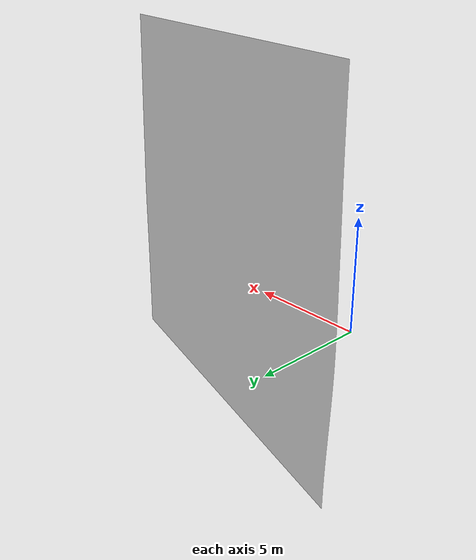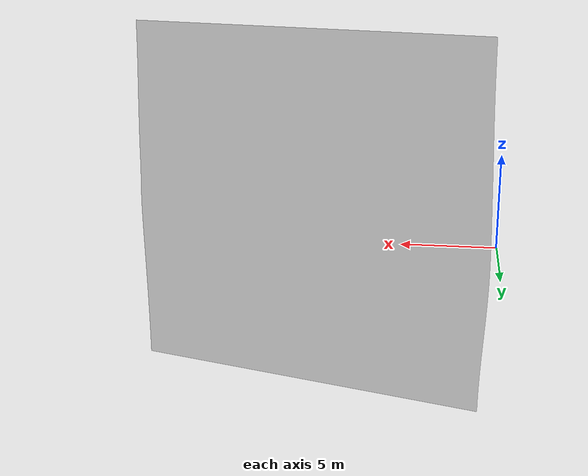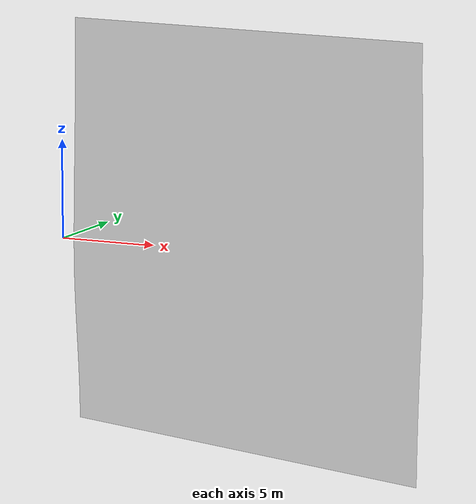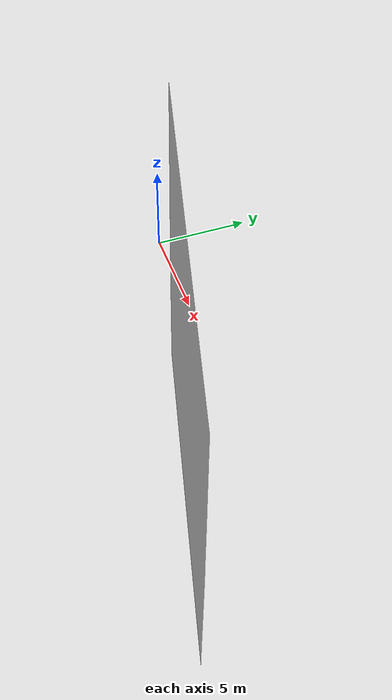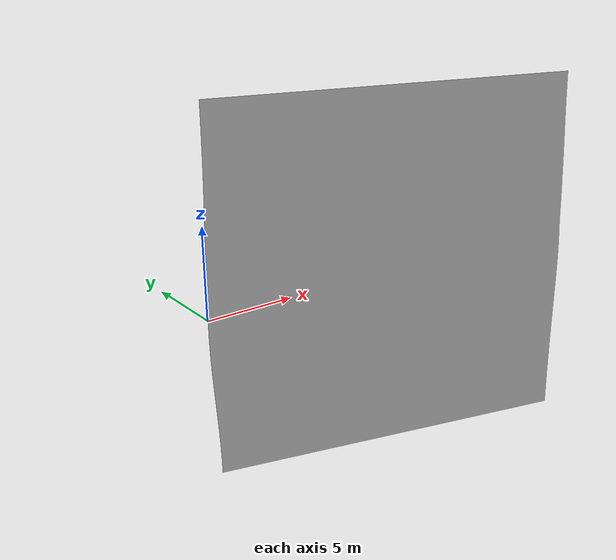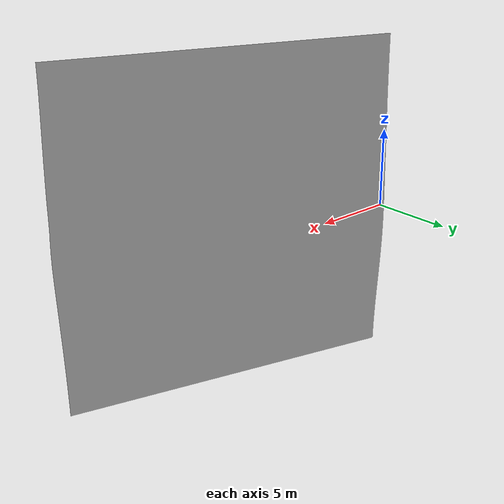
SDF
<?xml version="1.0" ?>
<sdf version="1.6">
  <model name="floor_demo_flatten">
    <static>true</static>
    <link name="link">
      <visual name="visual">
        <geometry>
          <mesh>
            <uri>model://floor_demo_flatten/floor_demo_flatten.dae</uri>
          </mesh>
        </geometry>
      </visual>
    </link>
  </model>
</sdf>
